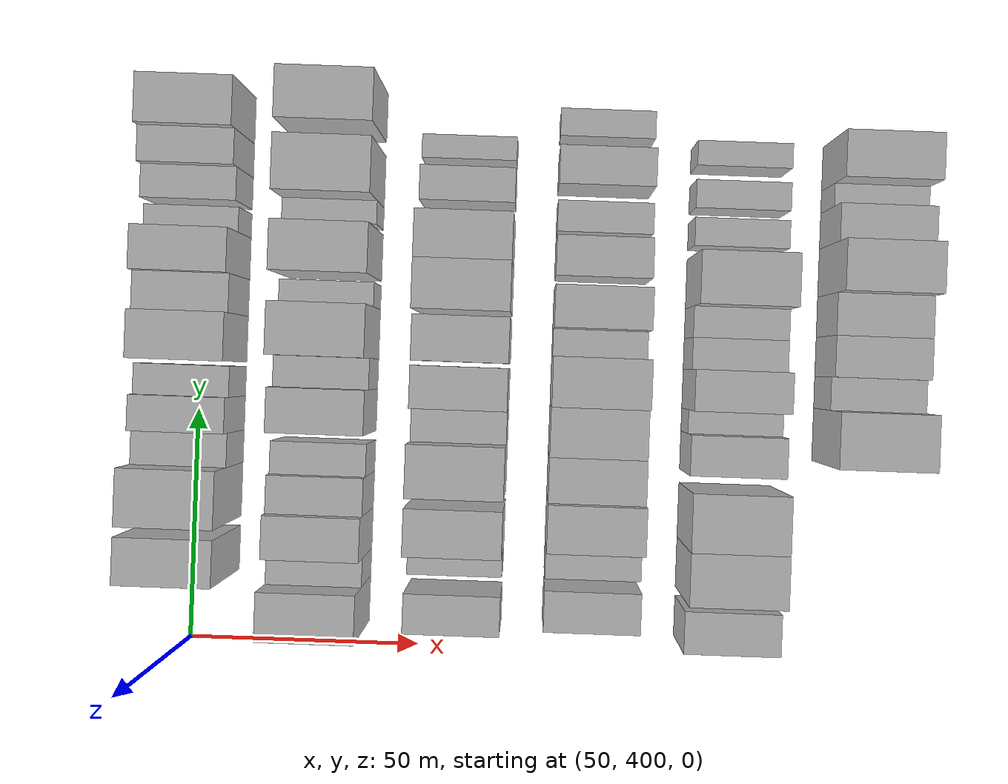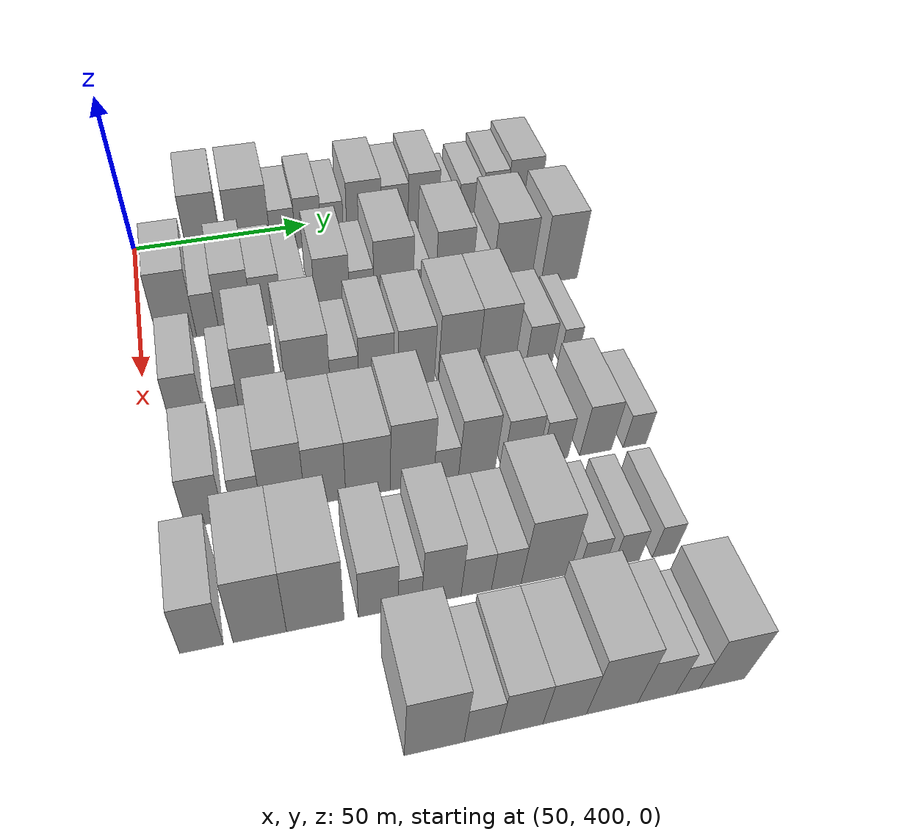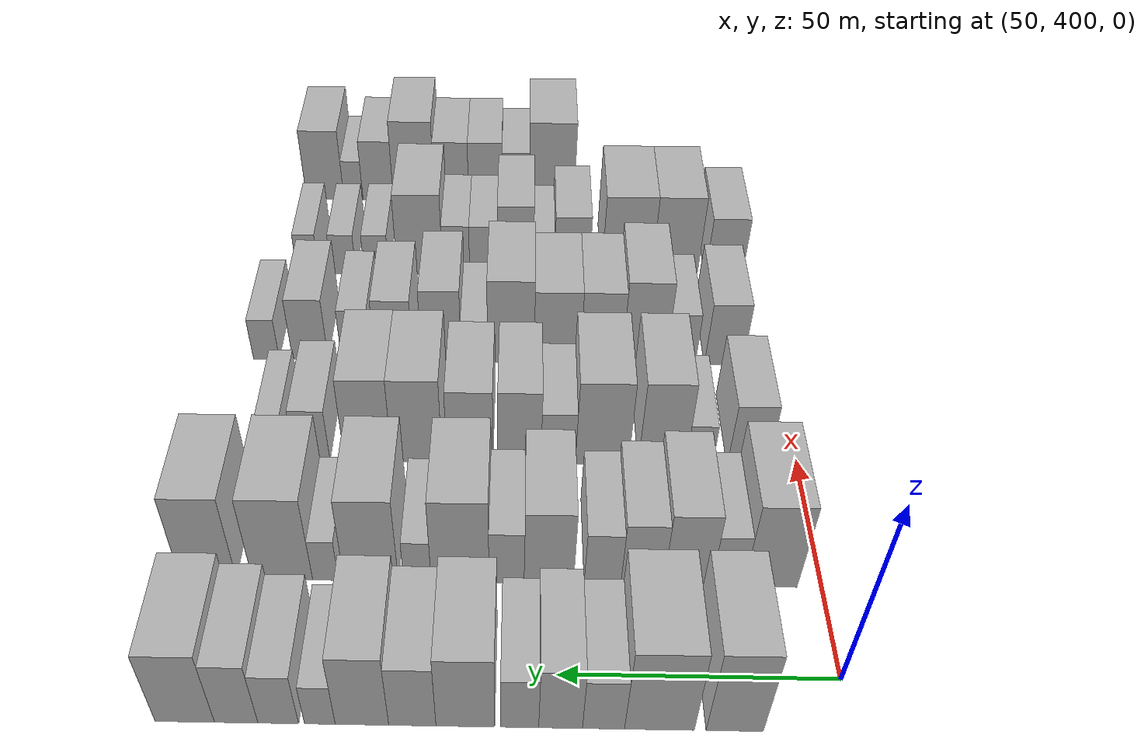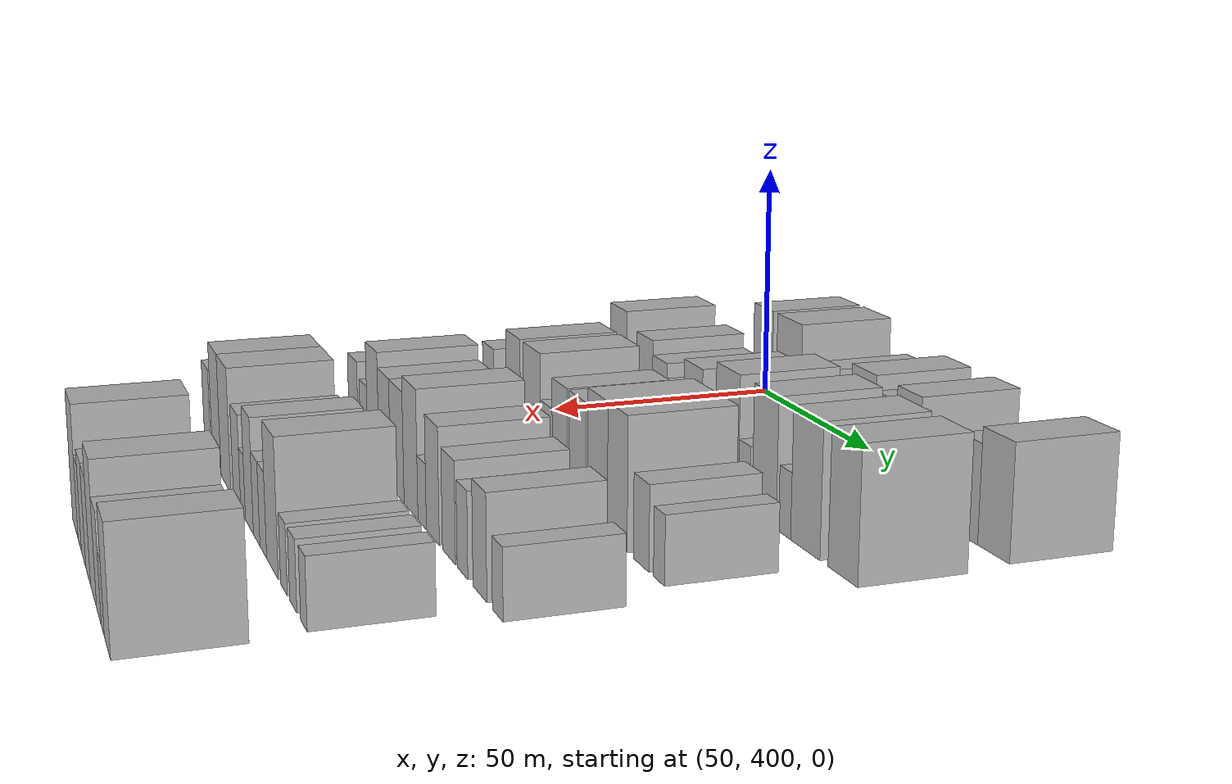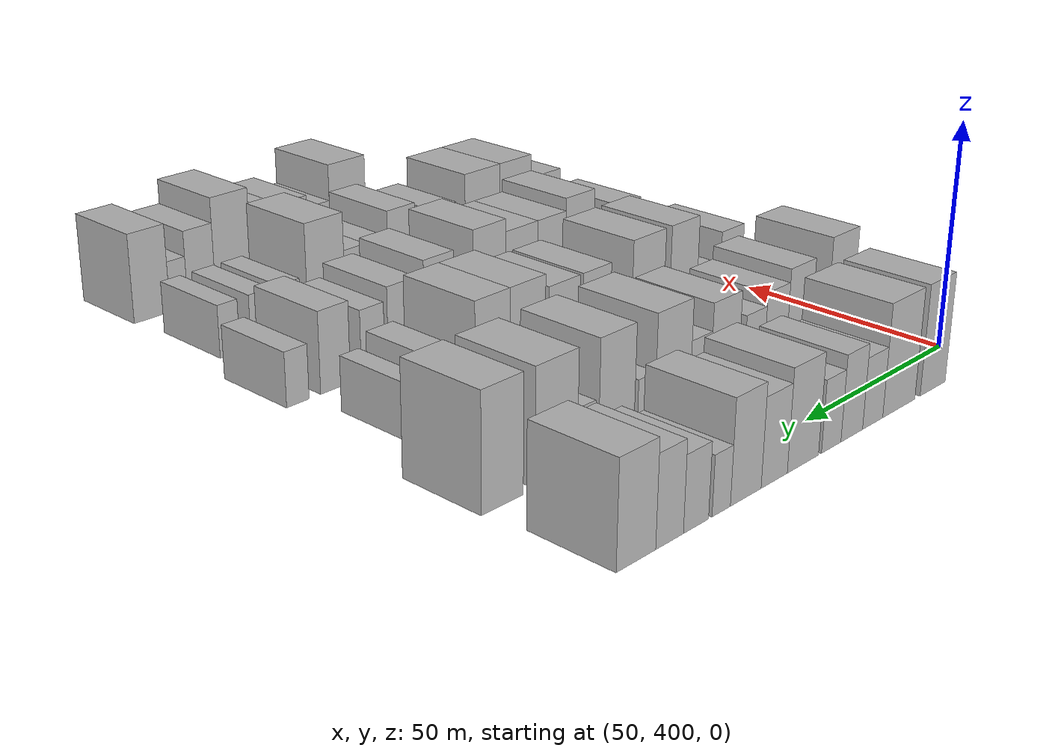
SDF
<sdf version="1.6">
 <world name="default">
  <model name="building_103">
   <static>1</static>
   <pose>50.0000 419.8773 0 0.000000 0.000000 0.000000</pose>
   <link name="link">
    <pose>0 0 12.00 0 0 0</pose>
    <collision name="collision"><geometry><box><size>20.0000 9.7105 24.0000</size></box></geometry></collision>
    <visual name="visual">
     <cast_shadows>0</cast_shadows>
     <geometry><box><size>20.0000 9.7105 24.0000</size></box></geometry>
     <material>
      <script>
       <uri>model://HANNAS_wall/materials/scripts</uri>
       <uri>model://HANNAS_wall/materials/textures</uri>
       <name>vrc/HANNAS_wall</name>
      </script>
     </material>
    </visual>
   </link>
  </model>
  <model name="building_104">
   <static>1</static>
   <pose>50.0000 432.6678 0 0.000000 0.000000 0.000000</pose>
   <link name="link">
    <pose>0 0 12.00 0 0 0</pose>
    <collision name="collision"><geometry><box><size>20.0000 11.8705 24.0000</size></box></geometry></collision>
    <visual name="visual">
     <cast_shadows>0</cast_shadows>
     <geometry><box><size>20.0000 11.8705 24.0000</size></box></geometry>
     <material>
      <script>
       <uri>model://HANNAS_wall/materials/scripts</uri>
       <uri>model://HANNAS_wall/materials/textures</uri>
       <name>vrc/HANNAS_wall</name>
      </script>
     </material>
    </visual>
   </link>
  </model>
  <model name="building_105">
   <static>1</static>
   <pose>50.0000 442.1800 0 0.000000 0.000000 0.000000</pose>
   <link name="link">
    <pose>0 0 7.50 0 0 0</pose>
    <collision name="collision"><geometry><box><size>20.0000 7.1539 15.0000</size></box></geometry></collision>
    <visual name="visual">
     <cast_shadows>0</cast_shadows>
     <geometry><box><size>20.0000 7.1539 15.0000</size></box></geometry>
     <material>
      <script>
       <uri>model://HANNAS_wall/materials/scripts</uri>
       <uri>model://HANNAS_wall/materials/textures</uri>
       <name>vrc/HANNAS_wall</name>
      </script>
     </material>
    </visual>
   </link>
  </model>
  <model name="building_106">
   <static>1</static>
   <pose>50.0000 449.4862 0 0.000000 0.000000 0.000000</pose>
   <link name="link">
    <pose>0 0 9.00 0 0 0</pose>
    <collision name="collision"><geometry><box><size>20.0000 7.4584 18.0000</size></box></geometry></collision>
    <visual name="visual">
     <cast_shadows>0</cast_shadows>
     <geometry><box><size>20.0000 7.4584 18.0000</size></box></geometry>
     <material>
      <script>
       <uri>model://HANNAS_wall/materials/scripts</uri>
       <uri>model://HANNAS_wall/materials/textures</uri>
       <name>vrc/HANNAS_wall</name>
      </script>
     </material>
    </visual>
   </link>
  </model>
  <model name="building_107">
   <static>1</static>
   <pose>50.0000 456.4592 0 0.000000 0.000000 0.000000</pose>
   <link name="link">
    <pose>0 0 7.50 0 0 0</pose>
    <collision name="collision"><geometry><box><size>20.0000 6.4878 15.0000</size></box></geometry></collision>
    <visual name="visual">
     <cast_shadows>0</cast_shadows>
     <geometry><box><size>20.0000 6.4878 15.0000</size></box></geometry>
     <material>
      <script>
       <uri>model://HANNAS_wall/materials/scripts</uri>
       <uri>model://HANNAS_wall/materials/textures</uri>
       <name>vrc/HANNAS_wall</name>
      </script>
     </material>
    </visual>
   </link>
  </model>
  <model name="building_108">
   <static>1</static>
   <pose>50.0000 465.7136 0 0.000000 0.000000 0.000000</pose>
   <link name="link">
    <pose>0 0 10.50 0 0 0</pose>
    <collision name="collision"><geometry><box><size>20.0000 10.0210 21.0000</size></box></geometry></collision>
    <visual name="visual">
     <cast_shadows>0</cast_shadows>
     <geometry><box><size>20.0000 10.0210 21.0000</size></box></geometry>
     <material>
      <script>
       <uri>model://HANNAS_wall/materials/scripts</uri>
       <uri>model://HANNAS_wall/materials/textures</uri>
       <name>vrc/HANNAS_wall</name>
      </script>
     </material>
    </visual>
   </link>
  </model>
  <model name="building_109">
   <static>1</static>
   <pose>50.0000 474.7589 0 0.000000 0.000000 0.000000</pose>
   <link name="link">
    <pose>0 0 9.00 0 0 0</pose>
    <collision name="collision"><geometry><box><size>20.0000 8.0694 18.0000</size></box></geometry></collision>
    <visual name="visual">
     <cast_shadows>0</cast_shadows>
     <geometry><box><size>20.0000 8.0694 18.0000</size></box></geometry>
     <material>
      <script>
       <uri>model://HANNAS_wall/materials/scripts</uri>
       <uri>model://HANNAS_wall/materials/textures</uri>
       <name>vrc/HANNAS_wall</name>
      </script>
     </material>
    </visual>
   </link>
  </model>
  <model name="building_110">
   <static>1</static>
   <pose>50.0000 483.3615 0 0.000000 0.000000 0.000000</pose>
   <link name="link">
    <pose>0 0 10.50 0 0 0</pose>
    <collision name="collision"><geometry><box><size>20.0000 9.1359 21.0000</size></box></geometry></collision>
    <visual name="visual">
     <cast_shadows>0</cast_shadows>
     <geometry><box><size>20.0000 9.1359 21.0000</size></box></geometry>
     <material>
      <script>
       <uri>model://HANNAS_wall/materials/scripts</uri>
       <uri>model://HANNAS_wall/materials/textures</uri>
       <name>vrc/HANNAS_wall</name>
      </script>
     </material>
    </visual>
   </link>
  </model>
  <model name="building_111">
   <static>1</static>
   <pose>50.0000 490.5596 0 0.000000 0.000000 0.000000</pose>
   <link name="link">
    <pose>0 0 6.00 0 0 0</pose>
    <collision name="collision"><geometry><box><size>20.0000 5.2603 12.0000</size></box></geometry></collision>
    <visual name="visual">
     <cast_shadows>0</cast_shadows>
     <geometry><box><size>20.0000 5.2603 12.0000</size></box></geometry>
     <material>
      <script>
       <uri>model://HANNAS_wall/materials/scripts</uri>
       <uri>model://HANNAS_wall/materials/textures</uri>
       <name>vrc/HANNAS_wall</name>
      </script>
     </material>
    </visual>
   </link>
  </model>
  <model name="building_112">
   <static>1</static>
   <pose>50.0000 497.6814 0 0.000000 0.000000 0.000000</pose>
   <link name="link">
    <pose>0 0 7.50 0 0 0</pose>
    <collision name="collision"><geometry><box><size>20.0000 6.9834 15.0000</size></box></geometry></collision>
    <visual name="visual">
     <cast_shadows>0</cast_shadows>
     <geometry><box><size>20.0000 6.9834 15.0000</size></box></geometry>
     <material>
      <script>
       <uri>model://HANNAS_wall/materials/scripts</uri>
       <uri>model://HANNAS_wall/materials/textures</uri>
       <name>vrc/HANNAS_wall</name>
      </script>
     </material>
    </visual>
   </link>
  </model>
  <model name="building_113">
   <static>1</static>
   <pose>50.0000 504.8981 0 0.000000 0.000000 0.000000</pose>
   <link name="link">
    <pose>0 0 9.00 0 0 0</pose>
    <collision name="collision"><geometry><box><size>20.0000 7.4501 18.0000</size></box></geometry></collision>
    <visual name="visual">
     <cast_shadows>0</cast_shadows>
     <geometry><box><size>20.0000 7.4501 18.0000</size></box></geometry>
     <material>
      <script>
       <uri>model://HANNAS_wall/materials/scripts</uri>
       <uri>model://HANNAS_wall/materials/textures</uri>
       <name>vrc/HANNAS_wall</name>
      </script>
     </material>
    </visual>
   </link>
  </model>
  <model name="building_114">
   <static>1</static>
   <pose>50.0000 513.7198 0 0.000000 0.000000 0.000000</pose>
   <link name="link">
    <pose>0 0 10.50 0 0 0</pose>
    <collision name="collision"><geometry><box><size>20.0000 10.1933 21.0000</size></box></geometry></collision>
    <visual name="visual">
     <cast_shadows>0</cast_shadows>
     <geometry><box><size>20.0000 10.1933 21.0000</size></box></geometry>
     <material>
      <script>
       <uri>model://HANNAS_wall/materials/scripts</uri>
       <uri>model://HANNAS_wall/materials/textures</uri>
       <name>vrc/HANNAS_wall</name>
      </script>
     </material>
    </visual>
   </link>
  </model>
  <model name="building_218">
   <static>1</static>
   <pose>79.0000 409.7172 0 0.000000 0.000000 0.000000</pose>
   <link name="link">
    <pose>0 0 12.00 0 0 0</pose>
    <collision name="collision"><geometry><box><size>20.0000 10.0252 24.0000</size></box></geometry></collision>
    <visual name="visual">
     <cast_shadows>0</cast_shadows>
     <geometry><box><size>20.0000 10.0252 24.0000</size></box></geometry>
     <material>
      <script>
       <uri>model://HANNAS_wall/materials/scripts</uri>
       <uri>model://HANNAS_wall/materials/textures</uri>
       <name>vrc/HANNAS_wall</name>
      </script>
     </material>
    </visual>
   </link>
  </model>
  <model name="building_219">
   <static>1</static>
   <pose>79.0000 417.7481 0 0.000000 0.000000 0.000000</pose>
   <link name="link">
    <pose>0 0 7.50 0 0 0</pose>
    <collision name="collision"><geometry><box><size>20.0000 6.0365 15.0000</size></box></geometry></collision>
    <visual name="visual">
     <cast_shadows>0</cast_shadows>
     <geometry><box><size>20.0000 6.0365 15.0000</size></box></geometry>
     <material>
      <script>
       <uri>model://HANNAS_wall/materials/scripts</uri>
       <uri>model://HANNAS_wall/materials/textures</uri>
       <name>vrc/HANNAS_wall</name>
      </script>
     </material>
    </visual>
   </link>
  </model>
  <model name="building_220">
   <static>1</static>
   <pose>79.0000 425.2669 0 0.000000 0.000000 0.000000</pose>
   <link name="link">
    <pose>0 0 10.50 0 0 0</pose>
    <collision name="collision"><geometry><box><size>20.0000 9.0013 21.0000</size></box></geometry></collision>
    <visual name="visual">
     <cast_shadows>0</cast_shadows>
     <geometry><box><size>20.0000 9.0013 21.0000</size></box></geometry>
     <material>
      <script>
       <uri>model://HANNAS_wall/materials/scripts</uri>
       <uri>model://HANNAS_wall/materials/textures</uri>
       <name>vrc/HANNAS_wall</name>
      </script>
     </material>
    </visual>
   </link>
  </model>
  <model name="building_221">
   <static>1</static>
   <pose>79.0000 433.7299 0 0.000000 0.000000 0.000000</pose>
   <link name="link">
    <pose>0 0 9.00 0 0 0</pose>
    <collision name="collision"><geometry><box><size>20.0000 7.9247 18.0000</size></box></geometry></collision>
    <visual name="visual">
     <cast_shadows>0</cast_shadows>
     <geometry><box><size>20.0000 7.9247 18.0000</size></box></geometry>
     <material>
      <script>
       <uri>model://HANNAS_wall/materials/scripts</uri>
       <uri>model://HANNAS_wall/materials/textures</uri>
       <name>vrc/HANNAS_wall</name>
      </script>
     </material>
    </visual>
   </link>
  </model>
  <model name="building_222">
   <static>1</static>
   <pose>79.0000 441.1308 0 0.000000 0.000000 0.000000</pose>
   <link name="link">
    <pose>0 0 7.50 0 0 0</pose>
    <collision name="collision"><geometry><box><size>20.0000 6.8771 15.0000</size></box></geometry></collision>
    <visual name="visual">
     <cast_shadows>0</cast_shadows>
     <geometry><box><size>20.0000 6.8771 15.0000</size></box></geometry>
     <material>
      <script>
       <uri>model://HANNAS_wall/materials/scripts</uri>
       <uri>model://HANNAS_wall/materials/textures</uri>
       <name>vrc/HANNAS_wall</name>
      </script>
     </material>
    </visual>
   </link>
  </model>
  <model name="building_223">
   <static>1</static>
   <pose>79.0000 451.2063 0 0.000000 0.000000 0.000000</pose>
   <link name="link">
    <pose>0 0 10.50 0 0 0</pose>
    <collision name="collision"><geometry><box><size>20.0000 9.2738 21.0000</size></box></geometry></collision>
    <visual name="visual">
     <cast_shadows>0</cast_shadows>
     <geometry><box><size>20.0000 9.2738 21.0000</size></box></geometry>
     <material>
      <script>
       <uri>model://HANNAS_wall/materials/scripts</uri>
       <uri>model://HANNAS_wall/materials/textures</uri>
       <name>vrc/HANNAS_wall</name>
      </script>
     </material>
    </visual>
   </link>
  </model>
  <model name="building_224">
   <static>1</static>
   <pose>79.0000 459.1316 0 0.000000 0.000000 0.000000</pose>
   <link name="link">
    <pose>0 0 7.50 0 0 0</pose>
    <collision name="collision"><geometry><box><size>20.0000 6.5770 15.0000</size></box></geometry></collision>
    <visual name="visual">
     <cast_shadows>0</cast_shadows>
     <geometry><box><size>20.0000 6.5770 15.0000</size></box></geometry>
     <material>
      <script>
       <uri>model://HANNAS_wall/materials/scripts</uri>
       <uri>model://HANNAS_wall/materials/textures</uri>
       <name>vrc/HANNAS_wall</name>
      </script>
     </material>
    </visual>
   </link>
  </model>
  <model name="building_225">
   <static>1</static>
   <pose>79.0000 467.8506 0 0.000000 0.000000 0.000000</pose>
   <link name="link">
    <pose>0 0 12.00 0 0 0</pose>
    <collision name="collision"><geometry><box><size>20.0000 10.8610 24.0000</size></box></geometry></collision>
    <visual name="visual">
     <cast_shadows>0</cast_shadows>
     <geometry><box><size>20.0000 10.8610 24.0000</size></box></geometry>
     <material>
      <script>
       <uri>model://HANNAS_wall/materials/scripts</uri>
       <uri>model://HANNAS_wall/materials/textures</uri>
       <name>vrc/HANNAS_wall</name>
      </script>
     </material>
    </visual>
   </link>
  </model>
  <model name="building_226">
   <static>1</static>
   <pose>79.0000 475.8673 0 0.000000 0.000000 0.000000</pose>
   <link name="link">
    <pose>0 0 6.00 0 0 0</pose>
    <collision name="collision"><geometry><box><size>20.0000 5.1723 12.0000</size></box></geometry></collision>
    <visual name="visual">
     <cast_shadows>0</cast_shadows>
     <geometry><box><size>20.0000 5.1723 12.0000</size></box></geometry>
     <material>
      <script>
       <uri>model://HANNAS_wall/materials/scripts</uri>
       <uri>model://HANNAS_wall/materials/textures</uri>
       <name>vrc/HANNAS_wall</name>
      </script>
     </material>
    </visual>
   </link>
  </model>
  <model name="building_227">
   <static>1</static>
   <pose>79.0000 484.5830 0 0.000000 0.000000 0.000000</pose>
   <link name="link">
    <pose>0 0 12.00 0 0 0</pose>
    <collision name="collision"><geometry><box><size>20.0000 10.2591 24.0000</size></box></geometry></collision>
    <visual name="visual">
     <cast_shadows>0</cast_shadows>
     <geometry><box><size>20.0000 10.2591 24.0000</size></box></geometry>
     <material>
      <script>
       <uri>model://HANNAS_wall/materials/scripts</uri>
       <uri>model://HANNAS_wall/materials/textures</uri>
       <name>vrc/HANNAS_wall</name>
      </script>
     </material>
    </visual>
   </link>
  </model>
  <model name="building_228">
   <static>1</static>
   <pose>79.0000 493.1608 0 0.000000 0.000000 0.000000</pose>
   <link name="link">
    <pose>0 0 6.00 0 0 0</pose>
    <collision name="collision"><geometry><box><size>20.0000 4.8964 12.0000</size></box></geometry></collision>
    <visual name="visual">
     <cast_shadows>0</cast_shadows>
     <geometry><box><size>20.0000 4.8964 12.0000</size></box></geometry>
     <material>
      <script>
       <uri>model://HANNAS_wall/materials/scripts</uri>
       <uri>model://HANNAS_wall/materials/textures</uri>
       <name>vrc/HANNAS_wall</name>
      </script>
     </material>
    </visual>
   </link>
  </model>
  <model name="building_229">
   <static>1</static>
   <pose>79.0000 501.3123 0 0.000000 0.000000 0.000000</pose>
   <link name="link">
    <pose>0 0 12.00 0 0 0</pose>
    <collision name="collision"><geometry><box><size>20.0000 11.4068 24.0000</size></box></geometry></collision>
    <visual name="visual">
     <cast_shadows>0</cast_shadows>
     <geometry><box><size>20.0000 11.4068 24.0000</size></box></geometry>
     <material>
      <script>
       <uri>model://HANNAS_wall/materials/scripts</uri>
       <uri>model://HANNAS_wall/materials/textures</uri>
       <name>vrc/HANNAS_wall</name>
      </script>
     </material>
    </visual>
   </link>
  </model>
  <model name="building_230">
   <static>1</static>
   <pose>79.0000 515.3353 0 0.000000 0.000000 0.000000</pose>
   <link name="link">
    <pose>0 0 12.00 0 0 0</pose>
    <collision name="collision"><geometry><box><size>20.0000 10.6391 24.0000</size></box></geometry></collision>
    <visual name="visual">
     <cast_shadows>0</cast_shadows>
     <geometry><box><size>20.0000 10.6391 24.0000</size></box></geometry>
     <material>
      <script>
       <uri>model://HANNAS_wall/materials/scripts</uri>
       <uri>model://HANNAS_wall/materials/textures</uri>
       <name>vrc/HANNAS_wall</name>
      </script>
     </material>
    </visual>
   </link>
  </model>
  <model name="building_336">
   <static>1</static>
   <pose>108.0000 410.2561 0 0.000000 0.000000 0.000000</pose>
   <link name="link">
    <pose>0 0 9.00 0 0 0</pose>
    <collision name="collision"><geometry><box><size>20.0000 8.2785 18.0000</size></box></geometry></collision>
    <visual name="visual">
     <cast_shadows>0</cast_shadows>
     <geometry><box><size>20.0000 8.2785 18.0000</size></box></geometry>
     <material>
      <script>
       <uri>model://HANNAS_wall/materials/scripts</uri>
       <uri>model://HANNAS_wall/materials/textures</uri>
       <name>vrc/HANNAS_wall</name>
      </script>
     </material>
    </visual>
   </link>
  </model>
  <model name="building_337">
   <static>1</static>
   <pose>108.0000 420.1304 0 0.000000 0.000000 0.000000</pose>
   <link name="link">
    <pose>0 0 6.00 0 0 0</pose>
    <collision name="collision"><geometry><box><size>20.0000 5.4702 12.0000</size></box></geometry></collision>
    <visual name="visual">
     <cast_shadows>0</cast_shadows>
     <geometry><box><size>20.0000 5.4702 12.0000</size></box></geometry>
     <material>
      <script>
       <uri>model://HANNAS_wall/materials/scripts</uri>
       <uri>model://HANNAS_wall/materials/textures</uri>
       <name>vrc/HANNAS_wall</name>
      </script>
     </material>
    </visual>
   </link>
  </model>
  <model name="building_338">
   <static>1</static>
   <pose>108.0000 427.7253 0 0.000000 0.000000 0.000000</pose>
   <link name="link">
    <pose>0 0 12.00 0 0 0</pose>
    <collision name="collision"><geometry><box><size>20.0000 9.7198 24.0000</size></box></geometry></collision>
    <visual name="visual">
     <cast_shadows>0</cast_shadows>
     <geometry><box><size>20.0000 9.7198 24.0000</size></box></geometry>
     <material>
      <script>
       <uri>model://HANNAS_wall/materials/scripts</uri>
       <uri>model://HANNAS_wall/materials/textures</uri>
       <name>vrc/HANNAS_wall</name>
      </script>
     </material>
    </visual>
   </link>
  </model>
  <model name="building_339">
   <static>1</static>
   <pose>108.0000 440.0270 0 0.000000 0.000000 0.000000</pose>
   <link name="link">
    <pose>0 0 12.00 0 0 0</pose>
    <collision name="collision"><geometry><box><size>20.0000 10.8836 24.0000</size></box></geometry></collision>
    <visual name="visual">
     <cast_shadows>0</cast_shadows>
     <geometry><box><size>20.0000 10.8836 24.0000</size></box></geometry>
     <material>
      <script>
       <uri>model://HANNAS_wall/materials/scripts</uri>
       <uri>model://HANNAS_wall/materials/textures</uri>
       <name>vrc/HANNAS_wall</name>
      </script>
     </material>
    </visual>
   </link>
  </model>
  <model name="building_340">
   <static>1</static>
   <pose>108.0000 449.0066 0 0.000000 0.000000 0.000000</pose>
   <link name="link">
    <pose>0 0 7.50 0 0 0</pose>
    <collision name="collision"><geometry><box><size>20.0000 7.0755 15.0000</size></box></geometry></collision>
    <visual name="visual">
     <cast_shadows>0</cast_shadows>
     <geometry><box><size>20.0000 7.0755 15.0000</size></box></geometry>
     <material>
      <script>
       <uri>model://HANNAS_wall/materials/scripts</uri>
       <uri>model://HANNAS_wall/materials/textures</uri>
       <name>vrc/HANNAS_wall</name>
      </script>
     </material>
    </visual>
   </link>
  </model>
  <model name="building_341">
   <static>1</static>
   <pose>108.0000 456.9489 0 0.000000 0.000000 0.000000</pose>
   <link name="link">
    <pose>0 0 10.50 0 0 0</pose>
    <collision name="collision"><geometry><box><size>20.0000 8.8092 21.0000</size></box></geometry></collision>
    <visual name="visual">
     <cast_shadows>0</cast_shadows>
     <geometry><box><size>20.0000 8.8092 21.0000</size></box></geometry>
     <material>
      <script>
       <uri>model://HANNAS_wall/materials/scripts</uri>
       <uri>model://HANNAS_wall/materials/textures</uri>
       <name>vrc/HANNAS_wall</name>
      </script>
     </material>
    </visual>
   </link>
  </model>
  <model name="building_342">
   <static>1</static>
   <pose>108.0000 467.0738 0 0.000000 0.000000 0.000000</pose>
   <link name="link">
    <pose>0 0 10.50 0 0 0</pose>
    <collision name="collision"><geometry><box><size>20.0000 9.4406 21.0000</size></box></geometry></collision>
    <visual name="visual">
     <cast_shadows>0</cast_shadows>
     <geometry><box><size>20.0000 9.4406 21.0000</size></box></geometry>
     <material>
      <script>
       <uri>model://HANNAS_wall/materials/scripts</uri>
       <uri>model://HANNAS_wall/materials/textures</uri>
       <name>vrc/HANNAS_wall</name>
      </script>
     </material>
    </visual>
   </link>
  </model>
  <model name="building_343">
   <static>1</static>
   <pose>108.0000 477.9369 0 0.000000 0.000000 0.000000</pose>
   <link name="link">
    <pose>0 0 12.00 0 0 0</pose>
    <collision name="collision"><geometry><box><size>20.0000 10.2856 24.0000</size></box></geometry></collision>
    <visual name="visual">
     <cast_shadows>0</cast_shadows>
     <geometry><box><size>20.0000 10.2856 24.0000</size></box></geometry>
     <material>
      <script>
       <uri>model://HANNAS_wall/materials/scripts</uri>
       <uri>model://HANNAS_wall/materials/textures</uri>
       <name>vrc/HANNAS_wall</name>
      </script>
     </material>
    </visual>
   </link>
  </model>
  <model name="building_344">
   <static>1</static>
   <pose>108.0000 487.9696 0 0.000000 0.000000 0.000000</pose>
   <link name="link">
    <pose>0 0 12.00 0 0 0</pose>
    <collision name="collision"><geometry><box><size>20.0000 9.7797 24.0000</size></box></geometry></collision>
    <visual name="visual">
     <cast_shadows>0</cast_shadows>
     <geometry><box><size>20.0000 9.7797 24.0000</size></box></geometry>
     <material>
      <script>
       <uri>model://HANNAS_wall/materials/scripts</uri>
       <uri>model://HANNAS_wall/materials/textures</uri>
       <name>vrc/HANNAS_wall</name>
      </script>
     </material>
    </visual>
   </link>
  </model>
  <model name="building_345">
   <static>1</static>
   <pose>108.0000 499.4750 0 0.000000 0.000000 0.000000</pose>
   <link name="link">
    <pose>0 0 7.50 0 0 0</pose>
    <collision name="collision"><geometry><box><size>20.0000 7.2312 15.0000</size></box></geometry></collision>
    <visual name="visual">
     <cast_shadows>0</cast_shadows>
     <geometry><box><size>20.0000 7.2312 15.0000</size></box></geometry>
     <material>
      <script>
       <uri>model://HANNAS_wall/materials/scripts</uri>
       <uri>model://HANNAS_wall/materials/textures</uri>
       <name>vrc/HANNAS_wall</name>
      </script>
     </material>
    </visual>
   </link>
  </model>
  <model name="building_346">
   <static>1</static>
   <pose>108.0000 507.5596 0 0.000000 0.000000 0.000000</pose>
   <link name="link">
    <pose>0 0 6.00 0 0 0</pose>
    <collision name="collision"><geometry><box><size>20.0000 4.9379 12.0000</size></box></geometry></collision>
    <visual name="visual">
     <cast_shadows>0</cast_shadows>
     <geometry><box><size>20.0000 4.9379 12.0000</size></box></geometry>
     <material>
      <script>
       <uri>model://HANNAS_wall/materials/scripts</uri>
       <uri>model://HANNAS_wall/materials/textures</uri>
       <name>vrc/HANNAS_wall</name>
      </script>
     </material>
    </visual>
   </link>
  </model>
  <model name="building_447">
   <static>1</static>
   <pose>137.0000 411.8013 0 0.000000 0.000000 0.000000</pose>
   <link name="link">
    <pose>0 0 9.00 0 0 0</pose>
    <collision name="collision"><geometry><box><size>20.0000 8.5006 18.0000</size></box></geometry></collision>
    <visual name="visual">
     <cast_shadows>0</cast_shadows>
     <geometry><box><size>20.0000 8.5006 18.0000</size></box></geometry>
     <material>
      <script>
       <uri>model://HANNAS_wall/materials/scripts</uri>
       <uri>model://HANNAS_wall/materials/textures</uri>
       <name>vrc/HANNAS_wall</name>
      </script>
     </material>
    </visual>
   </link>
  </model>
  <model name="building_448">
   <static>1</static>
   <pose>137.0000 421.2998 0 0.000000 0.000000 0.000000</pose>
   <link name="link">
    <pose>0 0 7.50 0 0 0</pose>
    <collision name="collision"><geometry><box><size>20.0000 6.4965 15.0000</size></box></geometry></collision>
    <visual name="visual">
     <cast_shadows>0</cast_shadows>
     <geometry><box><size>20.0000 6.4965 15.0000</size></box></geometry>
     <material>
      <script>
       <uri>model://HANNAS_wall/materials/scripts</uri>
       <uri>model://HANNAS_wall/materials/textures</uri>
       <name>vrc/HANNAS_wall</name>
      </script>
     </material>
    </visual>
   </link>
  </model>
  <model name="building_449">
   <static>1</static>
   <pose>137.0000 429.4510 0 0.000000 0.000000 0.000000</pose>
   <link name="link">
    <pose>0 0 12.00 0 0 0</pose>
    <collision name="collision"><geometry><box><size>20.0000 9.8059 24.0000</size></box></geometry></collision>
    <visual name="visual">
     <cast_shadows>0</cast_shadows>
     <geometry><box><size>20.0000 9.8059 24.0000</size></box></geometry>
     <material>
      <script>
       <uri>model://HANNAS_wall/materials/scripts</uri>
       <uri>model://HANNAS_wall/materials/textures</uri>
       <name>vrc/HANNAS_wall</name>
      </script>
     </material>
    </visual>
   </link>
  </model>
  <model name="building_450">
   <static>1</static>
   <pose>137.0000 439.0013 0 0.000000 0.000000 0.000000</pose>
   <link name="link">
    <pose>0 0 10.50 0 0 0</pose>
    <collision name="collision"><geometry><box><size>20.0000 9.2946 21.0000</size></box></geometry></collision>
    <visual name="visual">
     <cast_shadows>0</cast_shadows>
     <geometry><box><size>20.0000 9.2946 21.0000</size></box></geometry>
     <material>
      <script>
       <uri>model://HANNAS_wall/materials/scripts</uri>
       <uri>model://HANNAS_wall/materials/textures</uri>
       <name>vrc/HANNAS_wall</name>
      </script>
     </material>
    </visual>
   </link>
  </model>
  <model name="building_451">
   <static>1</static>
   <pose>137.0000 448.8045 0 0.000000 0.000000 0.000000</pose>
   <link name="link">
    <pose>0 0 10.50 0 0 0</pose>
    <collision name="collision"><geometry><box><size>20.0000 10.3119 21.0000</size></box></geometry></collision>
    <visual name="visual">
     <cast_shadows>0</cast_shadows>
     <geometry><box><size>20.0000 10.3119 21.0000</size></box></geometry>
     <material>
      <script>
       <uri>model://HANNAS_wall/materials/scripts</uri>
       <uri>model://HANNAS_wall/materials/textures</uri>
       <name>vrc/HANNAS_wall</name>
      </script>
     </material>
    </visual>
   </link>
  </model>
  <model name="building_452">
   <static>1</static>
   <pose>137.0000 459.0830 0 0.000000 0.000000 0.000000</pose>
   <link name="link">
    <pose>0 0 12.00 0 0 0</pose>
    <collision name="collision"><geometry><box><size>20.0000 10.2451 24.0000</size></box></geometry></collision>
    <visual name="visual">
     <cast_shadows>0</cast_shadows>
     <geometry><box><size>20.0000 10.2451 24.0000</size></box></geometry>
     <material>
      <script>
       <uri>model://HANNAS_wall/materials/scripts</uri>
       <uri>model://HANNAS_wall/materials/textures</uri>
       <name>vrc/HANNAS_wall</name>
      </script>
     </material>
    </visual>
   </link>
  </model>
  <model name="building_453">
   <static>1</static>
   <pose>137.0000 467.1584 0 0.000000 0.000000 0.000000</pose>
   <link name="link">
    <pose>0 0 6.00 0 0 0</pose>
    <collision name="collision"><geometry><box><size>20.0000 5.9058 12.0000</size></box></geometry></collision>
    <visual name="visual">
     <cast_shadows>0</cast_shadows>
     <geometry><box><size>20.0000 5.9058 12.0000</size></box></geometry>
     <material>
      <script>
       <uri>model://HANNAS_wall/materials/scripts</uri>
       <uri>model://HANNAS_wall/materials/textures</uri>
       <name>vrc/HANNAS_wall</name>
      </script>
     </material>
    </visual>
   </link>
  </model>
  <model name="building_454">
   <static>1</static>
   <pose>137.0000 474.4997 0 0.000000 0.000000 0.000000</pose>
   <link name="link">
    <pose>0 0 10.50 0 0 0</pose>
    <collision name="collision"><geometry><box><size>20.0000 8.7768 21.0000</size></box></geometry></collision>
    <visual name="visual">
     <cast_shadows>0</cast_shadows>
     <geometry><box><size>20.0000 8.7768 21.0000</size></box></geometry>
     <material>
      <script>
       <uri>model://HANNAS_wall/materials/scripts</uri>
       <uri>model://HANNAS_wall/materials/textures</uri>
       <name>vrc/HANNAS_wall</name>
      </script>
     </material>
    </visual>
   </link>
  </model>
  <model name="building_455">
   <static>1</static>
   <pose>137.0000 485.0819 0 0.000000 0.000000 0.000000</pose>
   <link name="link">
    <pose>0 0 9.00 0 0 0</pose>
    <collision name="collision"><geometry><box><size>20.0000 8.3876 18.0000</size></box></geometry></collision>
    <visual name="visual">
     <cast_shadows>0</cast_shadows>
     <geometry><box><size>20.0000 8.3876 18.0000</size></box></geometry>
     <material>
      <script>
       <uri>model://HANNAS_wall/materials/scripts</uri>
       <uri>model://HANNAS_wall/materials/textures</uri>
       <name>vrc/HANNAS_wall</name>
      </script>
     </material>
    </visual>
   </link>
  </model>
  <model name="building_456">
   <static>1</static>
   <pose>137.0000 493.5250 0 0.000000 0.000000 0.000000</pose>
   <link name="link">
    <pose>0 0 7.50 0 0 0</pose>
    <collision name="collision"><geometry><box><size>20.0000 6.4985 15.0000</size></box></geometry></collision>
    <visual name="visual">
     <cast_shadows>0</cast_shadows>
     <geometry><box><size>20.0000 6.4985 15.0000</size></box></geometry>
     <material>
      <script>
       <uri>model://HANNAS_wall/materials/scripts</uri>
       <uri>model://HANNAS_wall/materials/textures</uri>
       <name>vrc/HANNAS_wall</name>
      </script>
     </material>
    </visual>
   </link>
  </model>
  <model name="building_457">
   <static>1</static>
   <pose>137.0000 503.7523 0 0.000000 0.000000 0.000000</pose>
   <link name="link">
    <pose>0 0 9.00 0 0 0</pose>
    <collision name="collision"><geometry><box><size>20.0000 7.9561 18.0000</size></box></geometry></collision>
    <visual name="visual">
     <cast_shadows>0</cast_shadows>
     <geometry><box><size>20.0000 7.9561 18.0000</size></box></geometry>
     <material>
      <script>
       <uri>model://HANNAS_wall/materials/scripts</uri>
       <uri>model://HANNAS_wall/materials/textures</uri>
       <name>vrc/HANNAS_wall</name>
      </script>
     </material>
    </visual>
   </link>
  </model>
  <model name="building_458">
   <static>1</static>
   <pose>137.0000 513.6202 0 0.000000 0.000000 0.000000</pose>
   <link name="link">
    <pose>0 0 6.00 0 0 0</pose>
    <collision name="collision"><geometry><box><size>20.0000 5.7799 12.0000</size></box></geometry></collision>
    <visual name="visual">
     <cast_shadows>0</cast_shadows>
     <geometry><box><size>20.0000 5.7799 12.0000</size></box></geometry>
     <material>
      <script>
       <uri>model://HANNAS_wall/materials/scripts</uri>
       <uri>model://HANNAS_wall/materials/textures</uri>
       <name>vrc/HANNAS_wall</name>
      </script>
     </material>
    </visual>
   </link>
  </model>
  <model name="building_563">
   <static>1</static>
   <pose>166.0000 408.4821 0 0.000000 0.000000 0.000000</pose>
   <link name="link">
    <pose>0 0 9.00 0 0 0</pose>
    <collision name="collision"><geometry><box><size>20.0000 8.7493 18.0000</size></box></geometry></collision>
    <visual name="visual">
     <cast_shadows>0</cast_shadows>
     <geometry><box><size>20.0000 8.7493 18.0000</size></box></geometry>
     <material>
      <script>
       <uri>model://HANNAS_wall/materials/scripts</uri>
       <uri>model://HANNAS_wall/materials/textures</uri>
       <name>vrc/HANNAS_wall</name>
      </script>
     </material>
    </visual>
   </link>
  </model>
  <model name="building_564">
   <static>1</static>
   <pose>166.0000 420.3000 0 0.000000 0.000000 0.000000</pose>
   <link name="link">
    <pose>0 0 12.00 0 0 0</pose>
    <collision name="collision"><geometry><box><size>20.0000 10.8864 24.0000</size></box></geometry></collision>
    <visual name="visual">
     <cast_shadows>0</cast_shadows>
     <geometry><box><size>20.0000 10.8864 24.0000</size></box></geometry>
     <material>
      <script>
       <uri>model://HANNAS_wall/materials/scripts</uri>
       <uri>model://HANNAS_wall/materials/textures</uri>
       <name>vrc/HANNAS_wall</name>
      </script>
     </material>
    </visual>
   </link>
  </model>
  <model name="building_565">
   <static>1</static>
   <pose>166.0000 431.7235 0 0.000000 0.000000 0.000000</pose>
   <link name="link">
    <pose>0 0 12.00 0 0 0</pose>
    <collision name="collision"><geometry><box><size>20.0000 11.9606 24.0000</size></box></geometry></collision>
    <visual name="visual">
     <cast_shadows>0</cast_shadows>
     <geometry><box><size>20.0000 11.9606 24.0000</size></box></geometry>
     <material>
      <script>
       <uri>model://HANNAS_wall/materials/scripts</uri>
       <uri>model://HANNAS_wall/materials/textures</uri>
       <name>vrc/HANNAS_wall</name>
      </script>
     </material>
    </visual>
   </link>
  </model>
  <model name="building_566">
   <static>1</static>
   <pose>166.0000 444.8898 0 0.000000 0.000000 0.000000</pose>
   <link name="link">
    <pose>0 0 9.00 0 0 0</pose>
    <collision name="collision"><geometry><box><size>20.0000 8.3721 18.0000</size></box></geometry></collision>
    <visual name="visual">
     <cast_shadows>0</cast_shadows>
     <geometry><box><size>20.0000 8.3721 18.0000</size></box></geometry>
     <material>
      <script>
       <uri>model://HANNAS_wall/materials/scripts</uri>
       <uri>model://HANNAS_wall/materials/textures</uri>
       <name>vrc/HANNAS_wall</name>
      </script>
     </material>
    </visual>
   </link>
  </model>
  <model name="building_567">
   <static>1</static>
   <pose>166.0000 451.5924 0 0.000000 0.000000 0.000000</pose>
   <link name="link">
    <pose>0 0 6.00 0 0 0</pose>
    <collision name="collision"><geometry><box><size>20.0000 5.0332 12.0000</size></box></geometry></collision>
    <visual name="visual">
     <cast_shadows>0</cast_shadows>
     <geometry><box><size>20.0000 5.0332 12.0000</size></box></geometry>
     <material>
      <script>
       <uri>model://HANNAS_wall/materials/scripts</uri>
       <uri>model://HANNAS_wall/materials/textures</uri>
       <name>vrc/HANNAS_wall</name>
      </script>
     </material>
    </visual>
   </link>
  </model>
  <model name="building_568">
   <static>1</static>
   <pose>166.0000 458.3650 0 0.000000 0.000000 0.000000</pose>
   <link name="link">
    <pose>0 0 10.50 0 0 0</pose>
    <collision name="collision"><geometry><box><size>20.0000 8.5120 21.0000</size></box></geometry></collision>
    <visual name="visual">
     <cast_shadows>0</cast_shadows>
     <geometry><box><size>20.0000 8.5120 21.0000</size></box></geometry>
     <material>
      <script>
       <uri>model://HANNAS_wall/materials/scripts</uri>
       <uri>model://HANNAS_wall/materials/textures</uri>
       <name>vrc/HANNAS_wall</name>
      </script>
     </material>
    </visual>
   </link>
  </model>
  <model name="building_569">
   <static>1</static>
   <pose>166.0000 465.9480 0 0.000000 0.000000 0.000000</pose>
   <link name="link">
    <pose>0 0 7.50 0 0 0</pose>
    <collision name="collision"><geometry><box><size>20.0000 6.6539 15.0000</size></box></geometry></collision>
    <visual name="visual">
     <cast_shadows>0</cast_shadows>
     <geometry><box><size>20.0000 6.6539 15.0000</size></box></geometry>
     <material>
      <script>
       <uri>model://HANNAS_wall/materials/scripts</uri>
       <uri>model://HANNAS_wall/materials/textures</uri>
       <name>vrc/HANNAS_wall</name>
      </script>
     </material>
    </visual>
   </link>
  </model>
  <model name="building_570">
   <static>1</static>
   <pose>166.0000 472.5390 0 0.000000 0.000000 0.000000</pose>
   <link name="link">
    <pose>0 0 7.50 0 0 0</pose>
    <collision name="collision"><geometry><box><size>20.0000 6.5282 15.0000</size></box></geometry></collision>
    <visual name="visual">
     <cast_shadows>0</cast_shadows>
     <geometry><box><size>20.0000 6.5282 15.0000</size></box></geometry>
     <material>
      <script>
       <uri>model://HANNAS_wall/materials/scripts</uri>
       <uri>model://HANNAS_wall/materials/textures</uri>
       <name>vrc/HANNAS_wall</name>
      </script>
     </material>
    </visual>
   </link>
  </model>
  <model name="building_571">
   <static>1</static>
   <pose>166.0000 481.2406 0 0.000000 0.000000 0.000000</pose>
   <link name="link">
    <pose>0 0 12.00 0 0 0</pose>
    <collision name="collision"><geometry><box><size>20.0000 10.8748 24.0000</size></box></geometry></collision>
    <visual name="visual">
     <cast_shadows>0</cast_shadows>
     <geometry><box><size>20.0000 10.8748 24.0000</size></box></geometry>
     <material>
      <script>
       <uri>model://HANNAS_wall/materials/scripts</uri>
       <uri>model://HANNAS_wall/materials/textures</uri>
       <name>vrc/HANNAS_wall</name>
      </script>
     </material>
    </visual>
   </link>
  </model>
  <model name="building_572">
   <static>1</static>
   <pose>166.0000 491.6486 0 0.000000 0.000000 0.000000</pose>
   <link name="link">
    <pose>0 0 6.00 0 0 0</pose>
    <collision name="collision"><geometry><box><size>20.0000 5.9412 12.0000</size></box></geometry></collision>
    <visual name="visual">
     <cast_shadows>0</cast_shadows>
     <geometry><box><size>20.0000 5.9412 12.0000</size></box></geometry>
     <material>
      <script>
       <uri>model://HANNAS_wall/materials/scripts</uri>
       <uri>model://HANNAS_wall/materials/textures</uri>
       <name>vrc/HANNAS_wall</name>
      </script>
     </material>
    </visual>
   </link>
  </model>
  <model name="building_573">
   <static>1</static>
   <pose>166.0000 499.5942 0 0.000000 0.000000 0.000000</pose>
   <link name="link">
    <pose>0 0 6.00 0 0 0</pose>
    <collision name="collision"><geometry><box><size>20.0000 5.9499 12.0000</size></box></geometry></collision>
    <visual name="visual">
     <cast_shadows>0</cast_shadows>
     <geometry><box><size>20.0000 5.9499 12.0000</size></box></geometry>
     <material>
      <script>
       <uri>model://HANNAS_wall/materials/scripts</uri>
       <uri>model://HANNAS_wall/materials/textures</uri>
       <name>vrc/HANNAS_wall</name>
      </script>
     </material>
    </visual>
   </link>
  </model>
  <model name="building_574">
   <static>1</static>
   <pose>166.0000 508.1763 0 0.000000 0.000000 0.000000</pose>
   <link name="link">
    <pose>0 0 6.00 0 0 0</pose>
    <collision name="collision"><geometry><box><size>20.0000 5.2144 12.0000</size></box></geometry></collision>
    <visual name="visual">
     <cast_shadows>0</cast_shadows>
     <geometry><box><size>20.0000 5.2144 12.0000</size></box></geometry>
     <material>
      <script>
       <uri>model://HANNAS_wall/materials/scripts</uri>
       <uri>model://HANNAS_wall/materials/textures</uri>
       <name>vrc/HANNAS_wall</name>
      </script>
     </material>
    </visual>
   </link>
  </model>
  <model name="building_677">
   <static>1</static>
   <pose>195.0000 449.3333 0 0.000000 0.000000 0.000000</pose>
   <link name="link">
    <pose>0 0 12.00 0 0 0</pose>
    <collision name="collision"><geometry><box><size>20.0000 11.5875 24.0000</size></box></geometry></collision>
    <visual name="visual">
     <cast_shadows>0</cast_shadows>
     <geometry><box><size>20.0000 11.5875 24.0000</size></box></geometry>
     <material>
      <script>
       <uri>model://HANNAS_wall/materials/scripts</uri>
       <uri>model://HANNAS_wall/materials/textures</uri>
       <name>vrc/HANNAS_wall</name>
      </script>
     </material>
    </visual>
   </link>
  </model>
  <model name="building_678">
   <static>1</static>
   <pose>195.0000 458.6062 0 0.000000 0.000000 0.000000</pose>
   <link name="link">
    <pose>0 0 7.50 0 0 0</pose>
    <collision name="collision"><geometry><box><size>20.0000 6.9583 15.0000</size></box></geometry></collision>
    <visual name="visual">
     <cast_shadows>0</cast_shadows>
     <geometry><box><size>20.0000 6.9583 15.0000</size></box></geometry>
     <material>
      <script>
       <uri>model://HANNAS_wall/materials/scripts</uri>
       <uri>model://HANNAS_wall/materials/textures</uri>
       <name>vrc/HANNAS_wall</name>
      </script>
     </material>
    </visual>
   </link>
  </model>
  <model name="building_679">
   <static>1</static>
   <pose>195.0000 466.3797 0 0.000000 0.000000 0.000000</pose>
   <link name="link">
    <pose>0 0 9.00 0 0 0</pose>
    <collision name="collision"><geometry><box><size>20.0000 8.5887 18.0000</size></box></geometry></collision>
    <visual name="visual">
     <cast_shadows>0</cast_shadows>
     <geometry><box><size>20.0000 8.5887 18.0000</size></box></geometry>
     <material>
      <script>
       <uri>model://HANNAS_wall/materials/scripts</uri>
       <uri>model://HANNAS_wall/materials/textures</uri>
       <name>vrc/HANNAS_wall</name>
      </script>
     </material>
    </visual>
   </link>
  </model>
  <model name="building_680">
   <static>1</static>
   <pose>195.0000 475.0881 0 0.000000 0.000000 0.000000</pose>
   <link name="link">
    <pose>0 0 9.00 0 0 0</pose>
    <collision name="collision"><geometry><box><size>20.0000 8.8282 18.0000</size></box></geometry></collision>
    <visual name="visual">
     <cast_shadows>0</cast_shadows>
     <geometry><box><size>20.0000 8.8282 18.0000</size></box></geometry>
     <material>
      <script>
       <uri>model://HANNAS_wall/materials/scripts</uri>
       <uri>model://HANNAS_wall/materials/textures</uri>
       <name>vrc/HANNAS_wall</name>
      </script>
     </material>
    </visual>
   </link>
  </model>
  <model name="building_681">
   <static>1</static>
   <pose>195.0000 484.7711 0 0.000000 0.000000 0.000000</pose>
   <link name="link">
    <pose>0 0 12.00 0 0 0</pose>
    <collision name="collision"><geometry><box><size>20.0000 10.5377 24.0000</size></box></geometry></collision>
    <visual name="visual">
     <cast_shadows>0</cast_shadows>
     <geometry><box><size>20.0000 10.5377 24.0000</size></box></geometry>
     <material>
      <script>
       <uri>model://HANNAS_wall/materials/scripts</uri>
       <uri>model://HANNAS_wall/materials/textures</uri>
       <name>vrc/HANNAS_wall</name>
      </script>
     </material>
    </visual>
   </link>
  </model>
  <model name="building_682">
   <static>1</static>
   <pose>195.0000 493.9670 0 0.000000 0.000000 0.000000</pose>
   <link name="link">
    <pose>0 0 9.00 0 0 0</pose>
    <collision name="collision"><geometry><box><size>20.0000 7.8542 18.0000</size></box></geometry></collision>
    <visual name="visual">
     <cast_shadows>0</cast_shadows>
     <geometry><box><size>20.0000 7.8542 18.0000</size></box></geometry>
     <material>
      <script>
       <uri>model://HANNAS_wall/materials/scripts</uri>
       <uri>model://HANNAS_wall/materials/textures</uri>
       <name>vrc/HANNAS_wall</name>
      </script>
     </material>
    </visual>
   </link>
  </model>
  <model name="building_683">
   <static>1</static>
   <pose>195.0000 500.3525 0 0.000000 0.000000 0.000000</pose>
   <link name="link">
    <pose>0 0 6.00 0 0 0</pose>
    <collision name="collision"><geometry><box><size>20.0000 4.9168 12.0000</size></box></geometry></collision>
    <visual name="visual">
     <cast_shadows>0</cast_shadows>
     <geometry><box><size>20.0000 4.9168 12.0000</size></box></geometry>
     <material>
      <script>
       <uri>model://HANNAS_wall/materials/scripts</uri>
       <uri>model://HANNAS_wall/materials/textures</uri>
       <name>vrc/HANNAS_wall</name>
      </script>
     </material>
    </visual>
   </link>
  </model>
  <model name="building_684">
   <static>1</static>
   <pose>195.0000 507.6263 0 0.000000 0.000000 0.000000</pose>
   <link name="link">
    <pose>0 0 10.50 0 0 0</pose>
    <collision name="collision"><geometry><box><size>20.0000 9.6308 21.0000</size></box></geometry></collision>
    <visual name="visual">
     <cast_shadows>0</cast_shadows>
     <geometry><box><size>20.0000 9.6308 21.0000</size></box></geometry>
     <material>
      <script>
       <uri>model://HANNAS_wall/materials/scripts</uri>
       <uri>model://HANNAS_wall/materials/textures</uri>
       <name>vrc/HANNAS_wall</name>
      </script>
     </material>
    </visual>
   </link>
  </model>
 </world>
</sdf>
